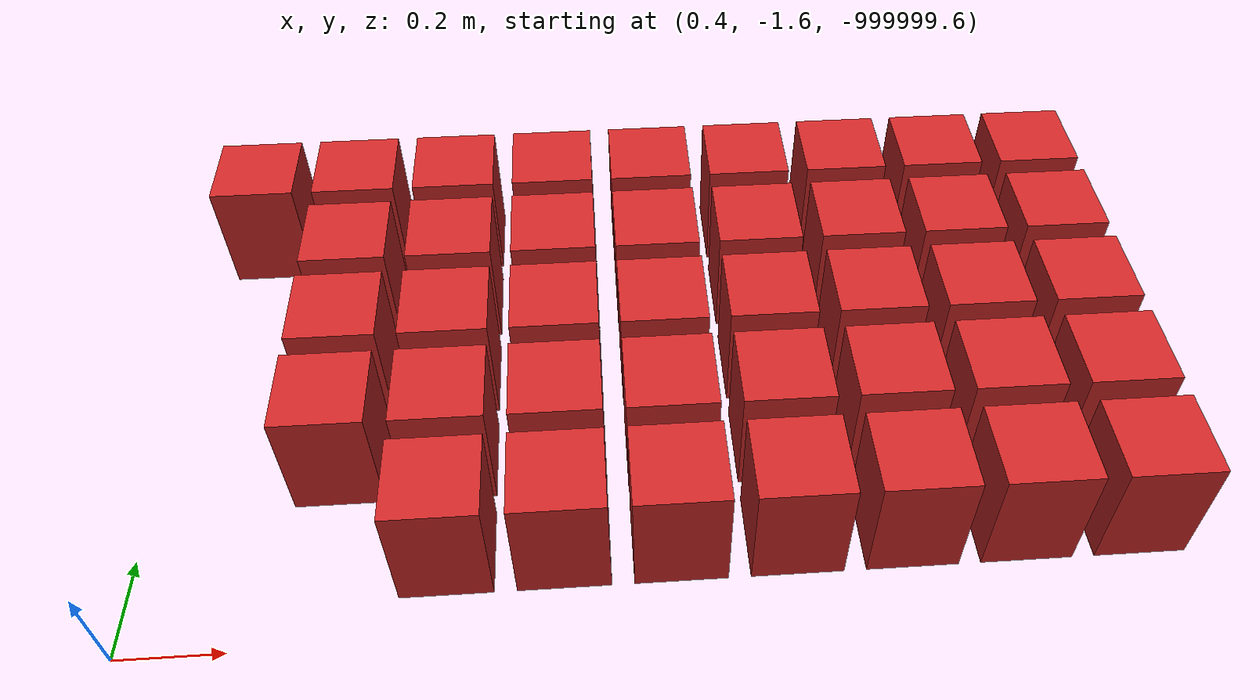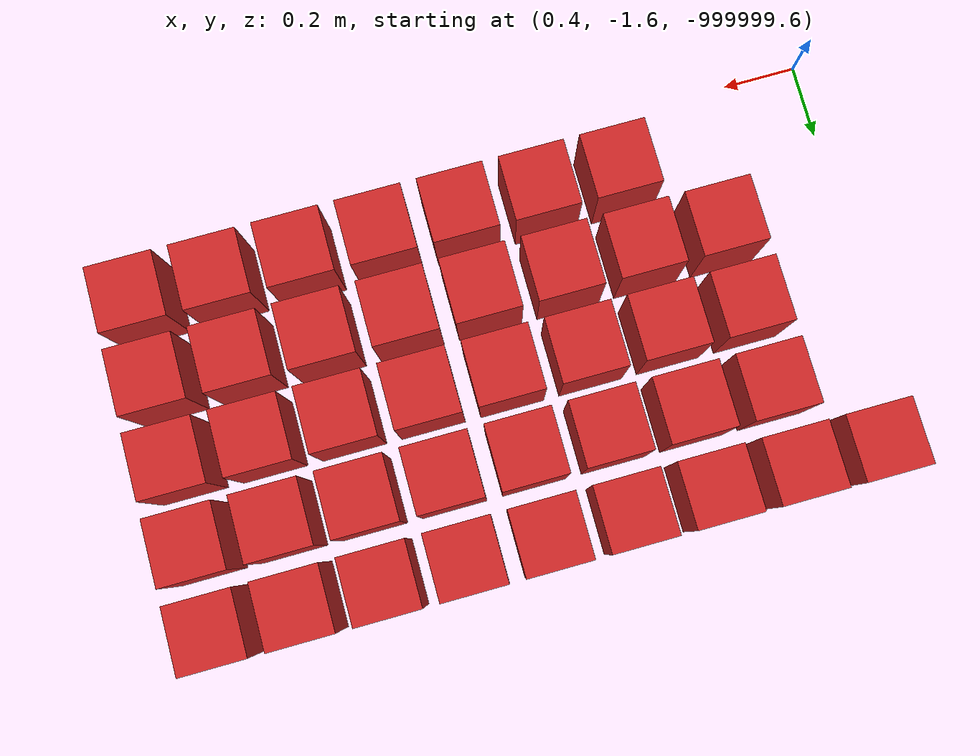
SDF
<sdf version="1.7">
 <world name="default">
  <model name="ground_plane">
   <static>1</static>
   <link name="link">
    <collision name="collision">
     <geometry><plane><normal>0 0 1</normal><size>100 100</size></plane></geometry>
     <surface>
      <contact><collide_bitmask>65535</collide_bitmask></contact>
      <friction><ode><mu>100</mu><mu2>50</mu2></ode></friction>
     </surface>
    </collision>
    <visual name="visual">
     <cast_shadows>0</cast_shadows>
     <geometry><plane><normal>0 0 1</normal><size>100 100</size></plane></geometry>
     <material>
      <script><uri>file://media/materials/scripts/gazebo.material</uri><name>Gazebo/Grey</name></script>
     </material>
    </visual>
   </link>
  </model>
  <model name="wall_131">
   <link name="link">
    <pose>0 0 0.5 0 -0 0</pose>
    <inertial>
     <mass>0.5167</mass>
     <inertia>
      <ixx>0.000861167</ixx>
      <ixy>0</ixy>
      <ixz>0</ixz>
      <iyy>0.000861167</iyy>
      <iyz>0</iyz>
      <izz>0.000861167</izz>
     </inertia>
    </inertial>
    <collision name="collision">
     <geometry><box><size>0.21 0.21 0.25</size></box></geometry>
     <surface>
      <contact>
       <poissons_ratio>0.347</poissons_ratio>
       <elastic_modulus>8.8e+09</elastic_modulus>
       <ode><kp>100000</kp><kd>100</kd><max_vel>100</max_vel><min_depth>0.001</min_depth></ode>
      </contact>
      <friction>
       <torsional>
        <coefficient>1</coefficient>
        <use_patch_radius>0</use_patch_radius>
        <surface_radius>0.01</surface_radius>
       </torsional>
      </friction>
     </surface>
    </collision>
    <visual name="visual">
     <geometry><box><size>0.175 0.175 0.25</size></box></geometry>
     <material>
      <script><uri>file://media/materials/scripts/gazebo.material</uri><name>Gazebo/Red</name></script>
     </material>
    </visual>
   </link>
   <pose>0.978261 -1.41304 -1e+06 0 -0 0</pose>
  </model>
  <model name="wall_132">
   <link name="link">
    <pose>0 0 0.5 0 -0 0</pose>
    <inertial>
     <mass>0.5167</mass>
     <inertia>
      <ixx>0.000861167</ixx>
      <ixy>0</ixy>
      <ixz>0</ixz>
      <iyy>0.000861167</iyy>
      <iyz>0</iyz>
      <izz>0.000861167</izz>
     </inertia>
    </inertial>
    <collision name="collision">
     <geometry><box><size>0.21 0.21 0.25</size></box></geometry>
     <surface>
      <contact>
       <poissons_ratio>0.347</poissons_ratio>
       <elastic_modulus>8.8e+09</elastic_modulus>
       <ode><kp>100000</kp><kd>100</kd><max_vel>100</max_vel><min_depth>0.001</min_depth></ode>
      </contact>
      <friction>
       <torsional>
        <coefficient>1</coefficient>
        <use_patch_radius>0</use_patch_radius>
        <surface_radius>0.01</surface_radius>
       </torsional>
      </friction>
     </surface>
    </collision>
    <visual name="visual">
     <geometry><box><size>0.175 0.175 0.25</size></box></geometry>
     <material>
      <script><uri>file://media/materials/scripts/gazebo.material</uri><name>Gazebo/Red</name></script>
     </material>
    </visual>
   </link>
   <pose>1.19565 -1.41304 -1e+06 0 -0 0</pose>
  </model>
  <model name="wall_133">
   <link name="link">
    <pose>0 0 0.5 0 -0 0</pose>
    <inertial>
     <mass>0.5167</mass>
     <inertia>
      <ixx>0.000861167</ixx>
      <ixy>0</ixy>
      <ixz>0</ixz>
      <iyy>0.000861167</iyy>
      <iyz>0</iyz>
      <izz>0.000861167</izz>
     </inertia>
    </inertial>
    <collision name="collision">
     <geometry><box><size>0.21 0.21 0.25</size></box></geometry>
     <surface>
      <contact>
       <poissons_ratio>0.347</poissons_ratio>
       <elastic_modulus>8.8e+09</elastic_modulus>
       <ode><kp>100000</kp><kd>100</kd><max_vel>100</max_vel><min_depth>0.001</min_depth></ode>
      </contact>
      <friction>
       <torsional>
        <coefficient>1</coefficient>
        <use_patch_radius>0</use_patch_radius>
        <surface_radius>0.01</surface_radius>
       </torsional>
      </friction>
     </surface>
    </collision>
    <visual name="visual">
     <geometry><box><size>0.175 0.175 0.25</size></box></geometry>
     <material>
      <script><uri>file://media/materials/scripts/gazebo.material</uri><name>Gazebo/Red</name></script>
     </material>
    </visual>
   </link>
   <pose>1.41304 -1.41304 -1e+06 0 -0 0</pose>
  </model>
  <model name="wall_134">
   <link name="link">
    <pose>0 0 0.5 0 -0 0</pose>
    <inertial>
     <mass>0.5167</mass>
     <inertia>
      <ixx>0.000861167</ixx>
      <ixy>0</ixy>
      <ixz>0</ixz>
      <iyy>0.000861167</iyy>
      <iyz>0</iyz>
      <izz>0.000861167</izz>
     </inertia>
    </inertial>
    <collision name="collision">
     <geometry><box><size>0.21 0.21 0.25</size></box></geometry>
     <surface>
      <contact>
       <poissons_ratio>0.347</poissons_ratio>
       <elastic_modulus>8.8e+09</elastic_modulus>
       <ode><kp>100000</kp><kd>100</kd><max_vel>100</max_vel><min_depth>0.001</min_depth></ode>
      </contact>
      <friction>
       <torsional>
        <coefficient>1</coefficient>
        <use_patch_radius>0</use_patch_radius>
        <surface_radius>0.01</surface_radius>
       </torsional>
      </friction>
     </surface>
    </collision>
    <visual name="visual">
     <geometry><box><size>0.175 0.175 0.25</size></box></geometry>
     <material>
      <script><uri>file://media/materials/scripts/gazebo.material</uri><name>Gazebo/Red</name></script>
     </material>
    </visual>
   </link>
   <pose>1.63043 -1.41304 -1e+06 0 -0 0</pose>
  </model>
  <model name="wall_135">
   <link name="link">
    <pose>0 0 0.5 0 -0 0</pose>
    <inertial>
     <mass>0.5167</mass>
     <inertia>
      <ixx>0.000861167</ixx>
      <ixy>0</ixy>
      <ixz>0</ixz>
      <iyy>0.000861167</iyy>
      <iyz>0</iyz>
      <izz>0.000861167</izz>
     </inertia>
    </inertial>
    <collision name="collision">
     <geometry><box><size>0.21 0.21 0.25</size></box></geometry>
     <surface>
      <contact>
       <poissons_ratio>0.347</poissons_ratio>
       <elastic_modulus>8.8e+09</elastic_modulus>
       <ode><kp>100000</kp><kd>100</kd><max_vel>100</max_vel><min_depth>0.001</min_depth></ode>
      </contact>
      <friction>
       <torsional>
        <coefficient>1</coefficient>
        <use_patch_radius>0</use_patch_radius>
        <surface_radius>0.01</surface_radius>
       </torsional>
      </friction>
     </surface>
    </collision>
    <visual name="visual">
     <geometry><box><size>0.175 0.175 0.25</size></box></geometry>
     <material>
      <script><uri>file://media/materials/scripts/gazebo.material</uri><name>Gazebo/Red</name></script>
     </material>
    </visual>
   </link>
   <pose>1.84783 -1.41304 -1e+06 0 -0 0</pose>
  </model>
  <model name="wall_136">
   <link name="link">
    <pose>0 0 0.5 0 -0 0</pose>
    <inertial>
     <mass>0.5167</mass>
     <inertia>
      <ixx>0.000861167</ixx>
      <ixy>0</ixy>
      <ixz>0</ixz>
      <iyy>0.000861167</iyy>
      <iyz>0</iyz>
      <izz>0.000861167</izz>
     </inertia>
    </inertial>
    <collision name="collision">
     <geometry><box><size>0.21 0.21 0.25</size></box></geometry>
     <surface>
      <contact>
       <poissons_ratio>0.347</poissons_ratio>
       <elastic_modulus>8.8e+09</elastic_modulus>
       <ode><kp>100000</kp><kd>100</kd><max_vel>100</max_vel><min_depth>0.001</min_depth></ode>
      </contact>
      <friction>
       <torsional>
        <coefficient>1</coefficient>
        <use_patch_radius>0</use_patch_radius>
        <surface_radius>0.01</surface_radius>
       </torsional>
      </friction>
     </surface>
    </collision>
    <visual name="visual">
     <geometry><box><size>0.175 0.175 0.25</size></box></geometry>
     <material>
      <script><uri>file://media/materials/scripts/gazebo.material</uri><name>Gazebo/Red</name></script>
     </material>
    </visual>
   </link>
   <pose>2.06522 -1.41304 -1e+06 0 -0 0</pose>
  </model>
  <model name="wall_137">
   <link name="link">
    <pose>0 0 0.5 0 -0 0</pose>
    <inertial>
     <mass>0.5167</mass>
     <inertia>
      <ixx>0.000861167</ixx>
      <ixy>0</ixy>
      <ixz>0</ixz>
      <iyy>0.000861167</iyy>
      <iyz>0</iyz>
      <izz>0.000861167</izz>
     </inertia>
    </inertial>
    <collision name="collision">
     <geometry><box><size>0.21 0.21 0.25</size></box></geometry>
     <surface>
      <contact>
       <poissons_ratio>0.347</poissons_ratio>
       <elastic_modulus>8.8e+09</elastic_modulus>
       <ode><kp>100000</kp><kd>100</kd><max_vel>100</max_vel><min_depth>0.001</min_depth></ode>
      </contact>
      <friction>
       <torsional>
        <coefficient>1</coefficient>
        <use_patch_radius>0</use_patch_radius>
        <surface_radius>0.01</surface_radius>
       </torsional>
      </friction>
     </surface>
    </collision>
    <visual name="visual">
     <geometry><box><size>0.175 0.175 0.25</size></box></geometry>
     <material>
      <script><uri>file://media/materials/scripts/gazebo.material</uri><name>Gazebo/Red</name></script>
     </material>
    </visual>
   </link>
   <pose>2.28261 -1.41304 -1e+06 0 -0 0</pose>
  </model>
  <model name="wall_153">
   <link name="link">
    <pose>0 0 0.5 0 -0 0</pose>
    <inertial>
     <mass>0.5167</mass>
     <inertia>
      <ixx>0.000861167</ixx>
      <ixy>0</ixy>
      <ixz>0</ixz>
      <iyy>0.000861167</iyy>
      <iyz>0</iyz>
      <izz>0.000861167</izz>
     </inertia>
    </inertial>
    <collision name="collision">
     <geometry><box><size>0.21 0.21 0.25</size></box></geometry>
     <surface>
      <contact>
       <poissons_ratio>0.347</poissons_ratio>
       <elastic_modulus>8.8e+09</elastic_modulus>
       <ode><kp>100000</kp><kd>100</kd><max_vel>100</max_vel><min_depth>0.001</min_depth></ode>
      </contact>
      <friction>
       <torsional>
        <coefficient>1</coefficient>
        <use_patch_radius>0</use_patch_radius>
        <surface_radius>0.01</surface_radius>
       </torsional>
      </friction>
     </surface>
    </collision>
    <visual name="visual">
     <geometry><box><size>0.175 0.175 0.25</size></box></geometry>
     <material>
      <script><uri>file://media/materials/scripts/gazebo.material</uri><name>Gazebo/Red</name></script>
     </material>
    </visual>
   </link>
   <pose>0.76087 -1.19565 -1e+06 0 -0 0</pose>
  </model>
  <model name="wall_154">
   <link name="link">
    <pose>0 0 0.5 0 -0 0</pose>
    <inertial>
     <mass>0.5167</mass>
     <inertia>
      <ixx>0.000861167</ixx>
      <ixy>0</ixy>
      <ixz>0</ixz>
      <iyy>0.000861167</iyy>
      <iyz>0</iyz>
      <izz>0.000861167</izz>
     </inertia>
    </inertial>
    <collision name="collision">
     <geometry><box><size>0.21 0.21 0.25</size></box></geometry>
     <surface>
      <contact>
       <poissons_ratio>0.347</poissons_ratio>
       <elastic_modulus>8.8e+09</elastic_modulus>
       <ode><kp>100000</kp><kd>100</kd><max_vel>100</max_vel><min_depth>0.001</min_depth></ode>
      </contact>
      <friction>
       <torsional>
        <coefficient>1</coefficient>
        <use_patch_radius>0</use_patch_radius>
        <surface_radius>0.01</surface_radius>
       </torsional>
      </friction>
     </surface>
    </collision>
    <visual name="visual">
     <geometry><box><size>0.175 0.175 0.25</size></box></geometry>
     <material>
      <script><uri>file://media/materials/scripts/gazebo.material</uri><name>Gazebo/Red</name></script>
     </material>
    </visual>
   </link>
   <pose>0.978261 -1.19565 -1e+06 0 -0 0</pose>
  </model>
  <model name="wall_155">
   <link name="link">
    <pose>0 0 0.5 0 -0 0</pose>
    <inertial>
     <mass>0.5167</mass>
     <inertia>
      <ixx>0.000861167</ixx>
      <ixy>0</ixy>
      <ixz>0</ixz>
      <iyy>0.000861167</iyy>
      <iyz>0</iyz>
      <izz>0.000861167</izz>
     </inertia>
    </inertial>
    <collision name="collision">
     <geometry><box><size>0.21 0.21 0.25</size></box></geometry>
     <surface>
      <contact>
       <poissons_ratio>0.347</poissons_ratio>
       <elastic_modulus>8.8e+09</elastic_modulus>
       <ode><kp>100000</kp><kd>100</kd><max_vel>100</max_vel><min_depth>0.001</min_depth></ode>
      </contact>
      <friction>
       <torsional>
        <coefficient>1</coefficient>
        <use_patch_radius>0</use_patch_radius>
        <surface_radius>0.01</surface_radius>
       </torsional>
      </friction>
     </surface>
    </collision>
    <visual name="visual">
     <geometry><box><size>0.175 0.175 0.25</size></box></geometry>
     <material>
      <script><uri>file://media/materials/scripts/gazebo.material</uri><name>Gazebo/Red</name></script>
     </material>
    </visual>
   </link>
   <pose>1.19565 -1.19565 -1e+06 0 -0 0</pose>
  </model>
  <model name="wall_156">
   <link name="link">
    <pose>0 0 0.5 0 -0 0</pose>
    <inertial>
     <mass>0.5167</mass>
     <inertia>
      <ixx>0.000861167</ixx>
      <ixy>0</ixy>
      <ixz>0</ixz>
      <iyy>0.000861167</iyy>
      <iyz>0</iyz>
      <izz>0.000861167</izz>
     </inertia>
    </inertial>
    <collision name="collision">
     <geometry><box><size>0.21 0.21 0.25</size></box></geometry>
     <surface>
      <contact>
       <poissons_ratio>0.347</poissons_ratio>
       <elastic_modulus>8.8e+09</elastic_modulus>
       <ode><kp>100000</kp><kd>100</kd><max_vel>100</max_vel><min_depth>0.001</min_depth></ode>
      </contact>
      <friction>
       <torsional>
        <coefficient>1</coefficient>
        <use_patch_radius>0</use_patch_radius>
        <surface_radius>0.01</surface_radius>
       </torsional>
      </friction>
     </surface>
    </collision>
    <visual name="visual">
     <geometry><box><size>0.175 0.175 0.25</size></box></geometry>
     <material>
      <script><uri>file://media/materials/scripts/gazebo.material</uri><name>Gazebo/Red</name></script>
     </material>
    </visual>
   </link>
   <pose>1.41304 -1.19565 -1e+06 0 -0 0</pose>
  </model>
  <model name="wall_157">
   <link name="link">
    <pose>0 0 0.5 0 -0 0</pose>
    <inertial>
     <mass>0.5167</mass>
     <inertia>
      <ixx>0.000861167</ixx>
      <ixy>0</ixy>
      <ixz>0</ixz>
      <iyy>0.000861167</iyy>
      <iyz>0</iyz>
      <izz>0.000861167</izz>
     </inertia>
    </inertial>
    <collision name="collision">
     <geometry><box><size>0.21 0.21 0.25</size></box></geometry>
     <surface>
      <contact>
       <poissons_ratio>0.347</poissons_ratio>
       <elastic_modulus>8.8e+09</elastic_modulus>
       <ode><kp>100000</kp><kd>100</kd><max_vel>100</max_vel><min_depth>0.001</min_depth></ode>
      </contact>
      <friction>
       <torsional>
        <coefficient>1</coefficient>
        <use_patch_radius>0</use_patch_radius>
        <surface_radius>0.01</surface_radius>
       </torsional>
      </friction>
     </surface>
    </collision>
    <visual name="visual">
     <geometry><box><size>0.175 0.175 0.25</size></box></geometry>
     <material>
      <script><uri>file://media/materials/scripts/gazebo.material</uri><name>Gazebo/Red</name></script>
     </material>
    </visual>
   </link>
   <pose>1.63043 -1.19565 -1e+06 0 -0 0</pose>
  </model>
  <model name="wall_158">
   <link name="link">
    <pose>0 0 0.5 0 -0 0</pose>
    <inertial>
     <mass>0.5167</mass>
     <inertia>
      <ixx>0.000861167</ixx>
      <ixy>0</ixy>
      <ixz>0</ixz>
      <iyy>0.000861167</iyy>
      <iyz>0</iyz>
      <izz>0.000861167</izz>
     </inertia>
    </inertial>
    <collision name="collision">
     <geometry><box><size>0.21 0.21 0.25</size></box></geometry>
     <surface>
      <contact>
       <poissons_ratio>0.347</poissons_ratio>
       <elastic_modulus>8.8e+09</elastic_modulus>
       <ode><kp>100000</kp><kd>100</kd><max_vel>100</max_vel><min_depth>0.001</min_depth></ode>
      </contact>
      <friction>
       <torsional>
        <coefficient>1</coefficient>
        <use_patch_radius>0</use_patch_radius>
        <surface_radius>0.01</surface_radius>
       </torsional>
      </friction>
     </surface>
    </collision>
    <visual name="visual">
     <geometry><box><size>0.175 0.175 0.25</size></box></geometry>
     <material>
      <script><uri>file://media/materials/scripts/gazebo.material</uri><name>Gazebo/Red</name></script>
     </material>
    </visual>
   </link>
   <pose>1.84783 -1.19565 -1e+06 0 -0 0</pose>
  </model>
  <model name="wall_159">
   <link name="link">
    <pose>0 0 0.5 0 -0 0</pose>
    <inertial>
     <mass>0.5167</mass>
     <inertia>
      <ixx>0.000861167</ixx>
      <ixy>0</ixy>
      <ixz>0</ixz>
      <iyy>0.000861167</iyy>
      <iyz>0</iyz>
      <izz>0.000861167</izz>
     </inertia>
    </inertial>
    <collision name="collision">
     <geometry><box><size>0.21 0.21 0.25</size></box></geometry>
     <surface>
      <contact>
       <poissons_ratio>0.347</poissons_ratio>
       <elastic_modulus>8.8e+09</elastic_modulus>
       <ode><kp>100000</kp><kd>100</kd><max_vel>100</max_vel><min_depth>0.001</min_depth></ode>
      </contact>
      <friction>
       <torsional>
        <coefficient>1</coefficient>
        <use_patch_radius>0</use_patch_radius>
        <surface_radius>0.01</surface_radius>
       </torsional>
      </friction>
     </surface>
    </collision>
    <visual name="visual">
     <geometry><box><size>0.175 0.175 0.25</size></box></geometry>
     <material>
      <script><uri>file://media/materials/scripts/gazebo.material</uri><name>Gazebo/Red</name></script>
     </material>
    </visual>
   </link>
   <pose>2.06522 -1.19565 -1e+06 0 -0 0</pose>
  </model>
  <model name="wall_160">
   <link name="link">
    <pose>0 0 0.5 0 -0 0</pose>
    <inertial>
     <mass>0.5167</mass>
     <inertia>
      <ixx>0.000861167</ixx>
      <ixy>0</ixy>
      <ixz>0</ixz>
      <iyy>0.000861167</iyy>
      <iyz>0</iyz>
      <izz>0.000861167</izz>
     </inertia>
    </inertial>
    <collision name="collision">
     <geometry><box><size>0.21 0.21 0.25</size></box></geometry>
     <surface>
      <contact>
       <poissons_ratio>0.347</poissons_ratio>
       <elastic_modulus>8.8e+09</elastic_modulus>
       <ode><kp>100000</kp><kd>100</kd><max_vel>100</max_vel><min_depth>0.001</min_depth></ode>
      </contact>
      <friction>
       <torsional>
        <coefficient>1</coefficient>
        <use_patch_radius>0</use_patch_radius>
        <surface_radius>0.01</surface_radius>
       </torsional>
      </friction>
     </surface>
    </collision>
    <visual name="visual">
     <geometry><box><size>0.175 0.175 0.25</size></box></geometry>
     <material>
      <script><uri>file://media/materials/scripts/gazebo.material</uri><name>Gazebo/Red</name></script>
     </material>
    </visual>
   </link>
   <pose>2.28261 -1.19565 -1e+06 0 -0 0</pose>
  </model>
  <model name="wall_176">
   <link name="link">
    <pose>0 0 0.5 0 -0 0</pose>
    <inertial>
     <mass>0.5167</mass>
     <inertia>
      <ixx>0.000861167</ixx>
      <ixy>0</ixy>
      <ixz>0</ixz>
      <iyy>0.000861167</iyy>
      <iyz>0</iyz>
      <izz>0.000861167</izz>
     </inertia>
    </inertial>
    <collision name="collision">
     <geometry><box><size>0.21 0.21 0.25</size></box></geometry>
     <surface>
      <contact>
       <poissons_ratio>0.347</poissons_ratio>
       <elastic_modulus>8.8e+09</elastic_modulus>
       <ode><kp>100000</kp><kd>100</kd><max_vel>100</max_vel><min_depth>0.001</min_depth></ode>
      </contact>
      <friction>
       <torsional>
        <coefficient>1</coefficient>
        <use_patch_radius>0</use_patch_radius>
        <surface_radius>0.01</surface_radius>
       </torsional>
      </friction>
     </surface>
    </collision>
    <visual name="visual">
     <geometry><box><size>0.175 0.175 0.25</size></box></geometry>
     <material>
      <script><uri>file://media/materials/scripts/gazebo.material</uri><name>Gazebo/Red</name></script>
     </material>
    </visual>
   </link>
   <pose>0.76087 -0.978261 -1e+06 0 -0 0</pose>
  </model>
  <model name="wall_177">
   <link name="link">
    <pose>0 0 0.5 0 -0 0</pose>
    <inertial>
     <mass>0.5167</mass>
     <inertia>
      <ixx>0.000861167</ixx>
      <ixy>0</ixy>
      <ixz>0</ixz>
      <iyy>0.000861167</iyy>
      <iyz>0</iyz>
      <izz>0.000861167</izz>
     </inertia>
    </inertial>
    <collision name="collision">
     <geometry><box><size>0.21 0.21 0.25</size></box></geometry>
     <surface>
      <contact>
       <poissons_ratio>0.347</poissons_ratio>
       <elastic_modulus>8.8e+09</elastic_modulus>
       <ode><kp>100000</kp><kd>100</kd><max_vel>100</max_vel><min_depth>0.001</min_depth></ode>
      </contact>
      <friction>
       <torsional>
        <coefficient>1</coefficient>
        <use_patch_radius>0</use_patch_radius>
        <surface_radius>0.01</surface_radius>
       </torsional>
      </friction>
     </surface>
    </collision>
    <visual name="visual">
     <geometry><box><size>0.175 0.175 0.25</size></box></geometry>
     <material>
      <script><uri>file://media/materials/scripts/gazebo.material</uri><name>Gazebo/Red</name></script>
     </material>
    </visual>
   </link>
   <pose>0.978261 -0.978261 -1e+06 0 -0 0</pose>
  </model>
  <model name="wall_178">
   <link name="link">
    <pose>0 0 0.5 0 -0 0</pose>
    <inertial>
     <mass>0.5167</mass>
     <inertia>
      <ixx>0.000861167</ixx>
      <ixy>0</ixy>
      <ixz>0</ixz>
      <iyy>0.000861167</iyy>
      <iyz>0</iyz>
      <izz>0.000861167</izz>
     </inertia>
    </inertial>
    <collision name="collision">
     <geometry><box><size>0.21 0.21 0.25</size></box></geometry>
     <surface>
      <contact>
       <poissons_ratio>0.347</poissons_ratio>
       <elastic_modulus>8.8e+09</elastic_modulus>
       <ode><kp>100000</kp><kd>100</kd><max_vel>100</max_vel><min_depth>0.001</min_depth></ode>
      </contact>
      <friction>
       <torsional>
        <coefficient>1</coefficient>
        <use_patch_radius>0</use_patch_radius>
        <surface_radius>0.01</surface_radius>
       </torsional>
      </friction>
     </surface>
    </collision>
    <visual name="visual">
     <geometry><box><size>0.175 0.175 0.25</size></box></geometry>
     <material>
      <script><uri>file://media/materials/scripts/gazebo.material</uri><name>Gazebo/Red</name></script>
     </material>
    </visual>
   </link>
   <pose>1.19565 -0.978261 -1e+06 0 -0 0</pose>
  </model>
  <model name="wall_179">
   <link name="link">
    <pose>0 0 0.5 0 -0 0</pose>
    <inertial>
     <mass>0.5167</mass>
     <inertia>
      <ixx>0.000861167</ixx>
      <ixy>0</ixy>
      <ixz>0</ixz>
      <iyy>0.000861167</iyy>
      <iyz>0</iyz>
      <izz>0.000861167</izz>
     </inertia>
    </inertial>
    <collision name="collision">
     <geometry><box><size>0.21 0.21 0.25</size></box></geometry>
     <surface>
      <contact>
       <poissons_ratio>0.347</poissons_ratio>
       <elastic_modulus>8.8e+09</elastic_modulus>
       <ode><kp>100000</kp><kd>100</kd><max_vel>100</max_vel><min_depth>0.001</min_depth></ode>
      </contact>
      <friction>
       <torsional>
        <coefficient>1</coefficient>
        <use_patch_radius>0</use_patch_radius>
        <surface_radius>0.01</surface_radius>
       </torsional>
      </friction>
     </surface>
    </collision>
    <visual name="visual">
     <geometry><box><size>0.175 0.175 0.25</size></box></geometry>
     <material>
      <script><uri>file://media/materials/scripts/gazebo.material</uri><name>Gazebo/Red</name></script>
     </material>
    </visual>
   </link>
   <pose>1.41304 -0.978261 -1e+06 0 -0 0</pose>
  </model>
  <model name="wall_180">
   <link name="link">
    <pose>0 0 0.5 0 -0 0</pose>
    <inertial>
     <mass>0.5167</mass>
     <inertia>
      <ixx>0.000861167</ixx>
      <ixy>0</ixy>
      <ixz>0</ixz>
      <iyy>0.000861167</iyy>
      <iyz>0</iyz>
      <izz>0.000861167</izz>
     </inertia>
    </inertial>
    <collision name="collision">
     <geometry><box><size>0.21 0.21 0.25</size></box></geometry>
     <surface>
      <contact>
       <poissons_ratio>0.347</poissons_ratio>
       <elastic_modulus>8.8e+09</elastic_modulus>
       <ode><kp>100000</kp><kd>100</kd><max_vel>100</max_vel><min_depth>0.001</min_depth></ode>
      </contact>
      <friction>
       <torsional>
        <coefficient>1</coefficient>
        <use_patch_radius>0</use_patch_radius>
        <surface_radius>0.01</surface_radius>
       </torsional>
      </friction>
     </surface>
    </collision>
    <visual name="visual">
     <geometry><box><size>0.175 0.175 0.25</size></box></geometry>
     <material>
      <script><uri>file://media/materials/scripts/gazebo.material</uri><name>Gazebo/Red</name></script>
     </material>
    </visual>
   </link>
   <pose>1.63043 -0.978261 -1e+06 0 -0 0</pose>
  </model>
  <model name="wall_181">
   <link name="link">
    <pose>0 0 0.5 0 -0 0</pose>
    <inertial>
     <mass>0.5167</mass>
     <inertia>
      <ixx>0.000861167</ixx>
      <ixy>0</ixy>
      <ixz>0</ixz>
      <iyy>0.000861167</iyy>
      <iyz>0</iyz>
      <izz>0.000861167</izz>
     </inertia>
    </inertial>
    <collision name="collision">
     <geometry><box><size>0.21 0.21 0.25</size></box></geometry>
     <surface>
      <contact>
       <poissons_ratio>0.347</poissons_ratio>
       <elastic_modulus>8.8e+09</elastic_modulus>
       <ode><kp>100000</kp><kd>100</kd><max_vel>100</max_vel><min_depth>0.001</min_depth></ode>
      </contact>
      <friction>
       <torsional>
        <coefficient>1</coefficient>
        <use_patch_radius>0</use_patch_radius>
        <surface_radius>0.01</surface_radius>
       </torsional>
      </friction>
     </surface>
    </collision>
    <visual name="visual">
     <geometry><box><size>0.175 0.175 0.25</size></box></geometry>
     <material>
      <script><uri>file://media/materials/scripts/gazebo.material</uri><name>Gazebo/Red</name></script>
     </material>
    </visual>
   </link>
   <pose>1.84783 -0.978261 -1e+06 0 -0 0</pose>
  </model>
  <model name="wall_182">
   <link name="link">
    <pose>0 0 0.5 0 -0 0</pose>
    <inertial>
     <mass>0.5167</mass>
     <inertia>
      <ixx>0.000861167</ixx>
      <ixy>0</ixy>
      <ixz>0</ixz>
      <iyy>0.000861167</iyy>
      <iyz>0</iyz>
      <izz>0.000861167</izz>
     </inertia>
    </inertial>
    <collision name="collision">
     <geometry><box><size>0.21 0.21 0.25</size></box></geometry>
     <surface>
      <contact>
       <poissons_ratio>0.347</poissons_ratio>
       <elastic_modulus>8.8e+09</elastic_modulus>
       <ode><kp>100000</kp><kd>100</kd><max_vel>100</max_vel><min_depth>0.001</min_depth></ode>
      </contact>
      <friction>
       <torsional>
        <coefficient>1</coefficient>
        <use_patch_radius>0</use_patch_radius>
        <surface_radius>0.01</surface_radius>
       </torsional>
      </friction>
     </surface>
    </collision>
    <visual name="visual">
     <geometry><box><size>0.175 0.175 0.25</size></box></geometry>
     <material>
      <script><uri>file://media/materials/scripts/gazebo.material</uri><name>Gazebo/Red</name></script>
     </material>
    </visual>
   </link>
   <pose>2.06522 -0.978261 -1e+06 0 -0 0</pose>
  </model>
  <model name="wall_183">
   <link name="link">
    <pose>0 0 0.5 0 -0 0</pose>
    <inertial>
     <mass>0.5167</mass>
     <inertia>
      <ixx>0.000861167</ixx>
      <ixy>0</ixy>
      <ixz>0</ixz>
      <iyy>0.000861167</iyy>
      <iyz>0</iyz>
      <izz>0.000861167</izz>
     </inertia>
    </inertial>
    <collision name="collision">
     <geometry><box><size>0.21 0.21 0.25</size></box></geometry>
     <surface>
      <contact>
       <poissons_ratio>0.347</poissons_ratio>
       <elastic_modulus>8.8e+09</elastic_modulus>
       <ode><kp>100000</kp><kd>100</kd><max_vel>100</max_vel><min_depth>0.001</min_depth></ode>
      </contact>
      <friction>
       <torsional>
        <coefficient>1</coefficient>
        <use_patch_radius>0</use_patch_radius>
        <surface_radius>0.01</surface_radius>
       </torsional>
      </friction>
     </surface>
    </collision>
    <visual name="visual">
     <geometry><box><size>0.175 0.175 0.25</size></box></geometry>
     <material>
      <script><uri>file://media/materials/scripts/gazebo.material</uri><name>Gazebo/Red</name></script>
     </material>
    </visual>
   </link>
   <pose>2.28261 -0.978261 -1e+06 0 -0 0</pose>
  </model>
  <model name="wall_199">
   <link name="link">
    <pose>0 0 0.5 0 -0 0</pose>
    <inertial>
     <mass>0.5167</mass>
     <inertia>
      <ixx>0.000861167</ixx>
      <ixy>0</ixy>
      <ixz>0</ixz>
      <iyy>0.000861167</iyy>
      <iyz>0</iyz>
      <izz>0.000861167</izz>
     </inertia>
    </inertial>
    <collision name="collision">
     <geometry><box><size>0.21 0.21 0.25</size></box></geometry>
     <surface>
      <contact>
       <poissons_ratio>0.347</poissons_ratio>
       <elastic_modulus>8.8e+09</elastic_modulus>
       <ode><kp>100000</kp><kd>100</kd><max_vel>100</max_vel><min_depth>0.001</min_depth></ode>
      </contact>
      <friction>
       <torsional>
        <coefficient>1</coefficient>
        <use_patch_radius>0</use_patch_radius>
        <surface_radius>0.01</surface_radius>
       </torsional>
      </friction>
     </surface>
    </collision>
    <visual name="visual">
     <geometry><box><size>0.175 0.175 0.25</size></box></geometry>
     <material>
      <script><uri>file://media/materials/scripts/gazebo.material</uri><name>Gazebo/Red</name></script>
     </material>
    </visual>
   </link>
   <pose>0.76087 -0.76087 -1e+06 0 -0 0</pose>
  </model>
  <model name="wall_200">
   <link name="link">
    <pose>0 0 0.5 0 -0 0</pose>
    <inertial>
     <mass>0.5167</mass>
     <inertia>
      <ixx>0.000861167</ixx>
      <ixy>0</ixy>
      <ixz>0</ixz>
      <iyy>0.000861167</iyy>
      <iyz>0</iyz>
      <izz>0.000861167</izz>
     </inertia>
    </inertial>
    <collision name="collision">
     <geometry><box><size>0.21 0.21 0.25</size></box></geometry>
     <surface>
      <contact>
       <poissons_ratio>0.347</poissons_ratio>
       <elastic_modulus>8.8e+09</elastic_modulus>
       <ode><kp>100000</kp><kd>100</kd><max_vel>100</max_vel><min_depth>0.001</min_depth></ode>
      </contact>
      <friction>
       <torsional>
        <coefficient>1</coefficient>
        <use_patch_radius>0</use_patch_radius>
        <surface_radius>0.01</surface_radius>
       </torsional>
      </friction>
     </surface>
    </collision>
    <visual name="visual">
     <geometry><box><size>0.175 0.175 0.25</size></box></geometry>
     <material>
      <script><uri>file://media/materials/scripts/gazebo.material</uri><name>Gazebo/Red</name></script>
     </material>
    </visual>
   </link>
   <pose>0.978261 -0.76087 -1e+06 0 -0 0</pose>
  </model>
  <model name="wall_201">
   <link name="link">
    <pose>0 0 0.5 0 -0 0</pose>
    <inertial>
     <mass>0.5167</mass>
     <inertia>
      <ixx>0.000861167</ixx>
      <ixy>0</ixy>
      <ixz>0</ixz>
      <iyy>0.000861167</iyy>
      <iyz>0</iyz>
      <izz>0.000861167</izz>
     </inertia>
    </inertial>
    <collision name="collision">
     <geometry><box><size>0.21 0.21 0.25</size></box></geometry>
     <surface>
      <contact>
       <poissons_ratio>0.347</poissons_ratio>
       <elastic_modulus>8.8e+09</elastic_modulus>
       <ode><kp>100000</kp><kd>100</kd><max_vel>100</max_vel><min_depth>0.001</min_depth></ode>
      </contact>
      <friction>
       <torsional>
        <coefficient>1</coefficient>
        <use_patch_radius>0</use_patch_radius>
        <surface_radius>0.01</surface_radius>
       </torsional>
      </friction>
     </surface>
    </collision>
    <visual name="visual">
     <geometry><box><size>0.175 0.175 0.25</size></box></geometry>
     <material>
      <script><uri>file://media/materials/scripts/gazebo.material</uri><name>Gazebo/Red</name></script>
     </material>
    </visual>
   </link>
   <pose>1.19565 -0.76087 -1e+06 0 -0 0</pose>
  </model>
  <model name="wall_202">
   <link name="link">
    <pose>0 0 0.5 0 -0 0</pose>
    <inertial>
     <mass>0.5167</mass>
     <inertia>
      <ixx>0.000861167</ixx>
      <ixy>0</ixy>
      <ixz>0</ixz>
      <iyy>0.000861167</iyy>
      <iyz>0</iyz>
      <izz>0.000861167</izz>
     </inertia>
    </inertial>
    <collision name="collision">
     <geometry><box><size>0.21 0.21 0.25</size></box></geometry>
     <surface>
      <contact>
       <poissons_ratio>0.347</poissons_ratio>
       <elastic_modulus>8.8e+09</elastic_modulus>
       <ode><kp>100000</kp><kd>100</kd><max_vel>100</max_vel><min_depth>0.001</min_depth></ode>
      </contact>
      <friction>
       <torsional>
        <coefficient>1</coefficient>
        <use_patch_radius>0</use_patch_radius>
        <surface_radius>0.01</surface_radius>
       </torsional>
      </friction>
     </surface>
    </collision>
    <visual name="visual">
     <geometry><box><size>0.175 0.175 0.25</size></box></geometry>
     <material>
      <script><uri>file://media/materials/scripts/gazebo.material</uri><name>Gazebo/Red</name></script>
     </material>
    </visual>
   </link>
   <pose>1.41304 -0.76087 -1e+06 0 -0 0</pose>
  </model>
  <model name="wall_203">
   <link name="link">
    <pose>0 0 0.5 0 -0 0</pose>
    <inertial>
     <mass>0.5167</mass>
     <inertia>
      <ixx>0.000861167</ixx>
      <ixy>0</ixy>
      <ixz>0</ixz>
      <iyy>0.000861167</iyy>
      <iyz>0</iyz>
      <izz>0.000861167</izz>
     </inertia>
    </inertial>
    <collision name="collision">
     <geometry><box><size>0.21 0.21 0.25</size></box></geometry>
     <surface>
      <contact>
       <poissons_ratio>0.347</poissons_ratio>
       <elastic_modulus>8.8e+09</elastic_modulus>
       <ode><kp>100000</kp><kd>100</kd><max_vel>100</max_vel><min_depth>0.001</min_depth></ode>
      </contact>
      <friction>
       <torsional>
        <coefficient>1</coefficient>
        <use_patch_radius>0</use_patch_radius>
        <surface_radius>0.01</surface_radius>
       </torsional>
      </friction>
     </surface>
    </collision>
    <visual name="visual">
     <geometry><box><size>0.175 0.175 0.25</size></box></geometry>
     <material>
      <script><uri>file://media/materials/scripts/gazebo.material</uri><name>Gazebo/Red</name></script>
     </material>
    </visual>
   </link>
   <pose>1.63043 -0.76087 -1e+06 0 -0 0</pose>
  </model>
  <model name="wall_204">
   <link name="link">
    <pose>0 0 0.5 0 -0 0</pose>
    <inertial>
     <mass>0.5167</mass>
     <inertia>
      <ixx>0.000861167</ixx>
      <ixy>0</ixy>
      <ixz>0</ixz>
      <iyy>0.000861167</iyy>
      <iyz>0</iyz>
      <izz>0.000861167</izz>
     </inertia>
    </inertial>
    <collision name="collision">
     <geometry><box><size>0.21 0.21 0.25</size></box></geometry>
     <surface>
      <contact>
       <poissons_ratio>0.347</poissons_ratio>
       <elastic_modulus>8.8e+09</elastic_modulus>
       <ode><kp>100000</kp><kd>100</kd><max_vel>100</max_vel><min_depth>0.001</min_depth></ode>
      </contact>
      <friction>
       <torsional>
        <coefficient>1</coefficient>
        <use_patch_radius>0</use_patch_radius>
        <surface_radius>0.01</surface_radius>
       </torsional>
      </friction>
     </surface>
    </collision>
    <visual name="visual">
     <geometry><box><size>0.175 0.175 0.25</size></box></geometry>
     <material>
      <script><uri>file://media/materials/scripts/gazebo.material</uri><name>Gazebo/Red</name></script>
     </material>
    </visual>
   </link>
   <pose>1.84783 -0.76087 -1e+06 0 -0 0</pose>
  </model>
  <model name="wall_205">
   <link name="link">
    <pose>0 0 0.5 0 -0 0</pose>
    <inertial>
     <mass>0.5167</mass>
     <inertia>
      <ixx>0.000861167</ixx>
      <ixy>0</ixy>
      <ixz>0</ixz>
      <iyy>0.000861167</iyy>
      <iyz>0</iyz>
      <izz>0.000861167</izz>
     </inertia>
    </inertial>
    <collision name="collision">
     <geometry><box><size>0.21 0.21 0.25</size></box></geometry>
     <surface>
      <contact>
       <poissons_ratio>0.347</poissons_ratio>
       <elastic_modulus>8.8e+09</elastic_modulus>
       <ode><kp>100000</kp><kd>100</kd><max_vel>100</max_vel><min_depth>0.001</min_depth></ode>
      </contact>
      <friction>
       <torsional>
        <coefficient>1</coefficient>
        <use_patch_radius>0</use_patch_radius>
        <surface_radius>0.01</surface_radius>
       </torsional>
      </friction>
     </surface>
    </collision>
    <visual name="visual">
     <geometry><box><size>0.175 0.175 0.25</size></box></geometry>
     <material>
      <script><uri>file://media/materials/scripts/gazebo.material</uri><name>Gazebo/Red</name></script>
     </material>
    </visual>
   </link>
   <pose>2.06522 -0.76087 -1e+06 0 -0 0</pose>
  </model>
  <model name="wall_206">
   <link name="link">
    <pose>0 0 0.5 0 -0 0</pose>
    <inertial>
     <mass>0.5167</mass>
     <inertia>
      <ixx>0.000861167</ixx>
      <ixy>0</ixy>
      <ixz>0</ixz>
      <iyy>0.000861167</iyy>
      <iyz>0</iyz>
      <izz>0.000861167</izz>
     </inertia>
    </inertial>
    <collision name="collision">
     <geometry><box><size>0.21 0.21 0.25</size></box></geometry>
     <surface>
      <contact>
       <poissons_ratio>0.347</poissons_ratio>
       <elastic_modulus>8.8e+09</elastic_modulus>
       <ode><kp>100000</kp><kd>100</kd><max_vel>100</max_vel><min_depth>0.001</min_depth></ode>
      </contact>
      <friction>
       <torsional>
        <coefficient>1</coefficient>
        <use_patch_radius>0</use_patch_radius>
        <surface_radius>0.01</surface_radius>
       </torsional>
      </friction>
     </surface>
    </collision>
    <visual name="visual">
     <geometry><box><size>0.175 0.175 0.25</size></box></geometry>
     <material>
      <script><uri>file://media/materials/scripts/gazebo.material</uri><name>Gazebo/Red</name></script>
     </material>
    </visual>
   </link>
   <pose>2.28261 -0.76087 -1e+06 0 -0 0</pose>
  </model>
  <model name="wall_221">
   <link name="link">
    <pose>0 0 0.5 0 -0 0</pose>
    <inertial>
     <mass>0.5167</mass>
     <inertia>
      <ixx>0.000861167</ixx>
      <ixy>0</ixy>
      <ixz>0</ixz>
      <iyy>0.000861167</iyy>
      <iyz>0</iyz>
      <izz>0.000861167</izz>
     </inertia>
    </inertial>
    <collision name="collision">
     <geometry><box><size>0.21 0.21 0.25</size></box></geometry>
     <surface>
      <contact>
       <poissons_ratio>0.347</poissons_ratio>
       <elastic_modulus>8.8e+09</elastic_modulus>
       <ode><kp>100000</kp><kd>100</kd><max_vel>100</max_vel><min_depth>0.001</min_depth></ode>
      </contact>
      <friction>
       <torsional>
        <coefficient>1</coefficient>
        <use_patch_radius>0</use_patch_radius>
        <surface_radius>0.01</surface_radius>
       </torsional>
      </friction>
     </surface>
    </collision>
    <visual name="visual">
     <geometry><box><size>0.175 0.175 0.25</size></box></geometry>
     <material>
      <script><uri>file://media/materials/scripts/gazebo.material</uri><name>Gazebo/Red</name></script>
     </material>
    </visual>
   </link>
   <pose>0.543478 -0.543478 -1e+06 0 -0 0</pose>
  </model>
  <model name="wall_222">
   <link name="link">
    <pose>0 0 0.5 0 -0 0</pose>
    <inertial>
     <mass>0.5167</mass>
     <inertia>
      <ixx>0.000861167</ixx>
      <ixy>0</ixy>
      <ixz>0</ixz>
      <iyy>0.000861167</iyy>
      <iyz>0</iyz>
      <izz>0.000861167</izz>
     </inertia>
    </inertial>
    <collision name="collision">
     <geometry><box><size>0.21 0.21 0.25</size></box></geometry>
     <surface>
      <contact>
       <poissons_ratio>0.347</poissons_ratio>
       <elastic_modulus>8.8e+09</elastic_modulus>
       <ode><kp>100000</kp><kd>100</kd><max_vel>100</max_vel><min_depth>0.001</min_depth></ode>
      </contact>
      <friction>
       <torsional>
        <coefficient>1</coefficient>
        <use_patch_radius>0</use_patch_radius>
        <surface_radius>0.01</surface_radius>
       </torsional>
      </friction>
     </surface>
    </collision>
    <visual name="visual">
     <geometry><box><size>0.175 0.175 0.25</size></box></geometry>
     <material>
      <script><uri>file://media/materials/scripts/gazebo.material</uri><name>Gazebo/Red</name></script>
     </material>
    </visual>
   </link>
   <pose>0.76087 -0.543478 -1e+06 0 -0 0</pose>
  </model>
  <model name="wall_223">
   <link name="link">
    <pose>0 0 0.5 0 -0 0</pose>
    <inertial>
     <mass>0.5167</mass>
     <inertia>
      <ixx>0.000861167</ixx>
      <ixy>0</ixy>
      <ixz>0</ixz>
      <iyy>0.000861167</iyy>
      <iyz>0</iyz>
      <izz>0.000861167</izz>
     </inertia>
    </inertial>
    <collision name="collision">
     <geometry><box><size>0.21 0.21 0.25</size></box></geometry>
     <surface>
      <contact>
       <poissons_ratio>0.347</poissons_ratio>
       <elastic_modulus>8.8e+09</elastic_modulus>
       <ode><kp>100000</kp><kd>100</kd><max_vel>100</max_vel><min_depth>0.001</min_depth></ode>
      </contact>
      <friction>
       <torsional>
        <coefficient>1</coefficient>
        <use_patch_radius>0</use_patch_radius>
        <surface_radius>0.01</surface_radius>
       </torsional>
      </friction>
     </surface>
    </collision>
    <visual name="visual">
     <geometry><box><size>0.175 0.175 0.25</size></box></geometry>
     <material>
      <script><uri>file://media/materials/scripts/gazebo.material</uri><name>Gazebo/Red</name></script>
     </material>
    </visual>
   </link>
   <pose>0.978261 -0.543478 -1e+06 0 -0 0</pose>
  </model>
  <model name="wall_224">
   <link name="link">
    <pose>0 0 0.5 0 -0 0</pose>
    <inertial>
     <mass>0.5167</mass>
     <inertia>
      <ixx>0.000861167</ixx>
      <ixy>0</ixy>
      <ixz>0</ixz>
      <iyy>0.000861167</iyy>
      <iyz>0</iyz>
      <izz>0.000861167</izz>
     </inertia>
    </inertial>
    <collision name="collision">
     <geometry><box><size>0.21 0.21 0.25</size></box></geometry>
     <surface>
      <contact>
       <poissons_ratio>0.347</poissons_ratio>
       <elastic_modulus>8.8e+09</elastic_modulus>
       <ode><kp>100000</kp><kd>100</kd><max_vel>100</max_vel><min_depth>0.001</min_depth></ode>
      </contact>
      <friction>
       <torsional>
        <coefficient>1</coefficient>
        <use_patch_radius>0</use_patch_radius>
        <surface_radius>0.01</surface_radius>
       </torsional>
      </friction>
     </surface>
    </collision>
    <visual name="visual">
     <geometry><box><size>0.175 0.175 0.25</size></box></geometry>
     <material>
      <script><uri>file://media/materials/scripts/gazebo.material</uri><name>Gazebo/Red</name></script>
     </material>
    </visual>
   </link>
   <pose>1.19565 -0.543478 -1e+06 0 -0 0</pose>
  </model>
  <model name="wall_225">
   <link name="link">
    <pose>0 0 0.5 0 -0 0</pose>
    <inertial>
     <mass>0.5167</mass>
     <inertia>
      <ixx>0.000861167</ixx>
      <ixy>0</ixy>
      <ixz>0</ixz>
      <iyy>0.000861167</iyy>
      <iyz>0</iyz>
      <izz>0.000861167</izz>
     </inertia>
    </inertial>
    <collision name="collision">
     <geometry><box><size>0.21 0.21 0.25</size></box></geometry>
     <surface>
      <contact>
       <poissons_ratio>0.347</poissons_ratio>
       <elastic_modulus>8.8e+09</elastic_modulus>
       <ode><kp>100000</kp><kd>100</kd><max_vel>100</max_vel><min_depth>0.001</min_depth></ode>
      </contact>
      <friction>
       <torsional>
        <coefficient>1</coefficient>
        <use_patch_radius>0</use_patch_radius>
        <surface_radius>0.01</surface_radius>
       </torsional>
      </friction>
     </surface>
    </collision>
    <visual name="visual">
     <geometry><box><size>0.175 0.175 0.25</size></box></geometry>
     <material>
      <script><uri>file://media/materials/scripts/gazebo.material</uri><name>Gazebo/Red</name></script>
     </material>
    </visual>
   </link>
   <pose>1.41304 -0.543478 -1e+06 0 -0 0</pose>
  </model>
  <model name="wall_226">
   <link name="link">
    <pose>0 0 0.5 0 -0 0</pose>
    <inertial>
     <mass>0.5167</mass>
     <inertia>
      <ixx>0.000861167</ixx>
      <ixy>0</ixy>
      <ixz>0</ixz>
      <iyy>0.000861167</iyy>
      <iyz>0</iyz>
      <izz>0.000861167</izz>
     </inertia>
    </inertial>
    <collision name="collision">
     <geometry><box><size>0.21 0.21 0.25</size></box></geometry>
     <surface>
      <contact>
       <poissons_ratio>0.347</poissons_ratio>
       <elastic_modulus>8.8e+09</elastic_modulus>
       <ode><kp>100000</kp><kd>100</kd><max_vel>100</max_vel><min_depth>0.001</min_depth></ode>
      </contact>
      <friction>
       <torsional>
        <coefficient>1</coefficient>
        <use_patch_radius>0</use_patch_radius>
        <surface_radius>0.01</surface_radius>
       </torsional>
      </friction>
     </surface>
    </collision>
    <visual name="visual">
     <geometry><box><size>0.175 0.175 0.25</size></box></geometry>
     <material>
      <script><uri>file://media/materials/scripts/gazebo.material</uri><name>Gazebo/Red</name></script>
     </material>
    </visual>
   </link>
   <pose>1.63043 -0.543478 -1e+06 0 -0 0</pose>
  </model>
  <model name="wall_227">
   <link name="link">
    <pose>0 0 0.5 0 -0 0</pose>
    <inertial>
     <mass>0.5167</mass>
     <inertia>
      <ixx>0.000861167</ixx>
      <ixy>0</ixy>
      <ixz>0</ixz>
      <iyy>0.000861167</iyy>
      <iyz>0</iyz>
      <izz>0.000861167</izz>
     </inertia>
    </inertial>
    <collision name="collision">
     <geometry><box><size>0.21 0.21 0.25</size></box></geometry>
     <surface>
      <contact>
       <poissons_ratio>0.347</poissons_ratio>
       <elastic_modulus>8.8e+09</elastic_modulus>
       <ode><kp>100000</kp><kd>100</kd><max_vel>100</max_vel><min_depth>0.001</min_depth></ode>
      </contact>
      <friction>
       <torsional>
        <coefficient>1</coefficient>
        <use_patch_radius>0</use_patch_radius>
        <surface_radius>0.01</surface_radius>
       </torsional>
      </friction>
     </surface>
    </collision>
    <visual name="visual">
     <geometry><box><size>0.175 0.175 0.25</size></box></geometry>
     <material>
      <script><uri>file://media/materials/scripts/gazebo.material</uri><name>Gazebo/Red</name></script>
     </material>
    </visual>
   </link>
   <pose>1.84783 -0.543478 -1e+06 0 -0 0</pose>
  </model>
  <model name="wall_228">
   <link name="link">
    <pose>0 0 0.5 0 -0 0</pose>
    <inertial>
     <mass>0.5167</mass>
     <inertia>
      <ixx>0.000861167</ixx>
      <ixy>0</ixy>
      <ixz>0</ixz>
      <iyy>0.000861167</iyy>
      <iyz>0</iyz>
      <izz>0.000861167</izz>
     </inertia>
    </inertial>
    <collision name="collision">
     <geometry><box><size>0.21 0.21 0.25</size></box></geometry>
     <surface>
      <contact>
       <poissons_ratio>0.347</poissons_ratio>
       <elastic_modulus>8.8e+09</elastic_modulus>
       <ode><kp>100000</kp><kd>100</kd><max_vel>100</max_vel><min_depth>0.001</min_depth></ode>
      </contact>
      <friction>
       <torsional>
        <coefficient>1</coefficient>
        <use_patch_radius>0</use_patch_radius>
        <surface_radius>0.01</surface_radius>
       </torsional>
      </friction>
     </surface>
    </collision>
    <visual name="visual">
     <geometry><box><size>0.175 0.175 0.25</size></box></geometry>
     <material>
      <script><uri>file://media/materials/scripts/gazebo.material</uri><name>Gazebo/Red</name></script>
     </material>
    </visual>
   </link>
   <pose>2.06522 -0.543478 -1e+06 0 -0 0</pose>
  </model>
  <model name="wall_229">
   <link name="link">
    <pose>0 0 0.5 0 -0 0</pose>
    <inertial>
     <mass>0.5167</mass>
     <inertia>
      <ixx>0.000861167</ixx>
      <ixy>0</ixy>
      <ixz>0</ixz>
      <iyy>0.000861167</iyy>
      <iyz>0</iyz>
      <izz>0.000861167</izz>
     </inertia>
    </inertial>
    <collision name="collision">
     <geometry><box><size>0.21 0.21 0.25</size></box></geometry>
     <surface>
      <contact>
       <poissons_ratio>0.347</poissons_ratio>
       <elastic_modulus>8.8e+09</elastic_modulus>
       <ode><kp>100000</kp><kd>100</kd><max_vel>100</max_vel><min_depth>0.001</min_depth></ode>
      </contact>
      <friction>
       <torsional>
        <coefficient>1</coefficient>
        <use_patch_radius>0</use_patch_radius>
        <surface_radius>0.01</surface_radius>
       </torsional>
      </friction>
     </surface>
    </collision>
    <visual name="visual">
     <geometry><box><size>0.175 0.175 0.25</size></box></geometry>
     <material>
      <script><uri>file://media/materials/scripts/gazebo.material</uri><name>Gazebo/Red</name></script>
     </material>
    </visual>
   </link>
   <pose>2.28261 -0.543478 -1e+06 0 -0 0</pose>
  </model>
 </world>
</sdf>
